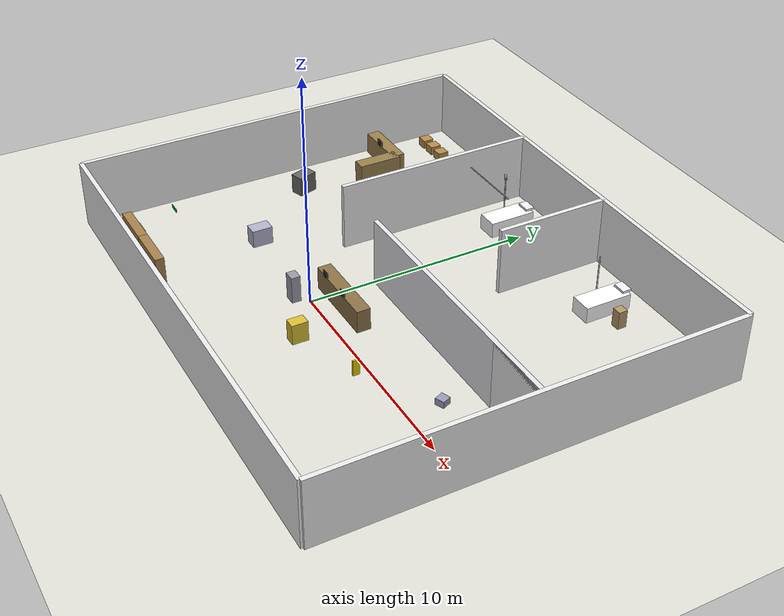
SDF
<sdf version="1.8">
 <world name="hospital">
  <physics name="1ms" type="ignored">
   <max_step_size>0.001</max_step_size>
   <real_time_factor>1.0</real_time_factor>
   <real_time_update_rate>1000</real_time_update_rate>
  </physics>
  <plugin filename="ignition-gazebo-physics-system" name="ignition::gazebo::systems::Physics"/>
  <plugin filename="ignition-gazebo-user-commands-system" name="ignition::gazebo::systems::UserCommands"/>
  <plugin filename="ignition-gazebo-scene-broadcaster-system" name="ignition::gazebo::systems::SceneBroadcaster"/>
  <plugin filename="ignition-gazebo-sensors-system" name="ignition::gazebo::systems::Sensors">
   <render_engine>ogre</render_engine>
  </plugin>
  <plugin filename="ignition-gazebo-contact-system" name="ignition::gazebo::systems::Contact"/>
  <light name="main_light_1" type="directional">
   <pose>0 0 8 0 0 0</pose>
   <diffuse>0.95 0.97 1.0 1</diffuse>
   <specular>0.1 0.1 0.1 1</specular>
   <direction>0.0 0.0 -1.0</direction>
   <cast_shadows>false</cast_shadows>
  </light>
  <light name="corridor_light_1" type="point">
   <pose>0 0 3.8 0 0 0</pose>
   <diffuse>0.95 0.97 1.0 1</diffuse>
   <specular>0.05 0.05 0.05 1</specular>
   <attenuation><range>10</range><linear>0.1</linear><constant>0.5</constant></attenuation>
   <cast_shadows>false</cast_shadows>
  </light>
  <light name="corridor_light_2" type="point">
   <pose>8 0 3.8 0 0 0</pose>
   <diffuse>0.95 0.97 1.0 1</diffuse>
   <specular>0.05 0.05 0.05 1</specular>
   <attenuation><range>10</range><linear>0.1</linear><constant>0.5</constant></attenuation>
   <cast_shadows>false</cast_shadows>
  </light>
  <light name="reception_light" type="point">
   <pose>-8 4 3.8 0 0 0</pose>
   <diffuse>0.95 0.97 1.0 1</diffuse>
   <specular>0.05 0.05 0.05 1</specular>
   <attenuation><range>8</range><linear>0.1</linear><constant>0.5</constant></attenuation>
   <cast_shadows>false</cast_shadows>
  </light>
  <model name="ground_plane">
   <static>true</static>
   <link name="link">
    <collision name="col">
     <geometry><plane><normal>0 0 1</normal><size>60 60</size></plane></geometry>
     <surface><friction><ode><mu>0.8</mu><mu2>0.8</mu2></ode></friction></surface>
    </collision>
    <visual name="vis">
     <geometry><plane><normal>0 0 1</normal><size>60 60</size></plane></geometry>
     <material>
      <ambient>0.88 0.88 0.85 1</ambient>
      <diffuse>0.88 0.88 0.85 1</diffuse>
      <specular>0.05 0.05 0.05 1</specular>
     </material>
    </visual>
   </link>
  </model>
  <model name="wall_north">
   <static>true</static>
   <pose>1 12 1.5 0 0 0</pose>
   <link name="link">
    <collision name="col"><geometry><box><size>22 0.2 3</size></box></geometry></collision>
    <visual name="vis">
     <geometry><box><size>22 0.2 3</size></box></geometry>
     <material>
      <ambient>0.92 0.92 0.92 1</ambient>
      <diffuse>0.92 0.92 0.92 1</diffuse>
      <specular>0.02 0.02 0.02 1</specular>
     </material>
    </visual>
   </link>
  </model>
  <model name="wall_south">
   <static>true</static>
   <pose>1 -6 1.5 0 0 0</pose>
   <link name="link">
    <collision name="col"><geometry><box><size>22 0.2 3</size></box></geometry></collision>
    <visual name="vis">
     <geometry><box><size>22 0.2 3</size></box></geometry>
     <material>
      <ambient>0.92 0.92 0.92 1</ambient>
      <diffuse>0.92 0.92 0.92 1</diffuse>
      <specular>0.02 0.02 0.02 1</specular>
     </material>
    </visual>
   </link>
  </model>
  <model name="wall_west">
   <static>true</static>
   <pose>-10 3 1.5 0 0 0</pose>
   <link name="link">
    <collision name="col"><geometry><box><size>0.2 18 3</size></box></geometry></collision>
    <visual name="vis">
     <geometry><box><size>0.2 18 3</size></box></geometry>
     <material>
      <ambient>0.92 0.92 0.92 1</ambient>
      <diffuse>0.92 0.92 0.92 1</diffuse>
      <specular>0.02 0.02 0.02 1</specular>
     </material>
    </visual>
   </link>
  </model>
  <model name="wall_east">
   <static>true</static>
   <pose>12 3 1.5 0 0 0</pose>
   <link name="link">
    <collision name="col"><geometry><box><size>0.2 18 3</size></box></geometry></collision>
    <visual name="vis">
     <geometry><box><size>0.2 18 3</size></box></geometry>
     <material>
      <ambient>0.92 0.92 0.92 1</ambient>
      <diffuse>0.92 0.92 0.92 1</diffuse>
      <specular>0.02 0.02 0.02 1</specular>
     </material>
    </visual>
   </link>
  </model>
  <model name="corridor_north_east">
   <static>true</static>
   <pose>6 3 1.5 0 0 0</pose>
   <link name="link">
    <collision name="col"><geometry><box><size>12 0.2 3</size></box></geometry></collision>
    <visual name="vis">
     <geometry><box><size>12 0.2 3</size></box></geometry>
     <material>
      <ambient>0.90 0.90 0.92 1</ambient>
      <diffuse>0.90 0.90 0.92 1</diffuse>
      <specular>0.02 0.02 0.02 1</specular>
     </material>
    </visual>
   </link>
  </model>
  <model name="supply_table">
   <static>true</static>
   <pose>-8.5 8 0.5 0 0 0</pose>
   <link name="link">
    <collision name="col"><geometry><box><size>2.5 0.6 1.0</size></box></geometry></collision>
    <visual name="vis">
     <geometry><box><size>2.5 0.6 1.0</size></box></geometry>
     <material><ambient>0.6 0.5 0.3 1</ambient><diffuse>0.6 0.5 0.3 1</diffuse></material>
    </visual>
   </link>
  </model>
  <model name="supply_side">
   <static>true</static>
   <pose>-7.4 7.0 0.5 0 0 0</pose>
   <link name="link">
    <collision name="col"><geometry><box><size>0.6 2.0 1.0</size></box></geometry></collision>
    <visual name="vis">
     <geometry><box><size>0.6 2.0 1.0</size></box></geometry>
     <material><ambient>0.6 0.5 0.3 1</ambient><diffuse>0.6 0.5 0.3 1</diffuse></material>
    </visual>
   </link>
  </model>
  <model name="reception_monitor">
   <static>true</static>
   <pose>-8.5 7.7 1.1 0 0 0</pose>
   <link name="link">
    <collision name="col"><geometry><box><size>0.4 0.05 0.3</size></box></geometry></collision>
    <visual name="vis">
     <geometry><box><size>0.4 0.05 0.3</size></box></geometry>
     <material><ambient>0.1 0.1 0.1 1</ambient><diffuse>0.1 0.1 0.1 1</diffuse></material>
    </visual>
   </link>
  </model>
  <model name="supply_box_1">
   <static>true</static>
   <pose>-9.0 10.5 0.2 0 0 0</pose>
   <link name="link">
    <collision name="col"><geometry><box><size>0.5 0.5 0.4</size></box></geometry></collision>
    <visual name="vis">
     <geometry><box><size>0.5 0.5 0.4</size></box></geometry>
     <material><ambient>0.72 0.55 0.3 1</ambient><diffuse>0.72 0.55 0.3 1</diffuse></material>
    </visual>
   </link>
  </model>
  <model name="supply_box_2">
   <static>true</static>
   <pose>-8.3 10.5 0.2 0 0 0</pose>
   <link name="link">
    <collision name="col"><geometry><box><size>0.5 0.5 0.4</size></box></geometry></collision>
    <visual name="vis">
     <geometry><box><size>0.5 0.5 0.4</size></box></geometry>
     <material><ambient>0.72 0.55 0.3 1</ambient><diffuse>0.72 0.55 0.3 1</diffuse></material>
    </visual>
   </link>
  </model>
  <model name="supply_box_3">
   <static>true</static>
   <pose>-7.6 10.5 0.2 0 0 0</pose>
   <link name="link">
    <collision name="col"><geometry><box><size>0.5 0.5 0.4</size></box></geometry></collision>
    <visual name="vis">
     <geometry><box><size>0.5 0.5 0.4</size></box></geometry>
     <material><ambient>0.72 0.55 0.3 1</ambient><diffuse>0.72 0.55 0.3 1</diffuse></material>
    </visual>
   </link>
  </model>
  <model name="room1_west">
   <static>true</static>
   <pose>-3 7.5 1.5 0 0 0</pose>
   <link name="link">
    <collision name="col"><geometry><box><size>0.2 9 3</size></box></geometry></collision>
    <visual name="vis">
     <geometry><box><size>0.2 9 3</size></box></geometry>
     <material><ambient>0.92 0.92 0.92 1</ambient><diffuse>0.92 0.92 0.92 1</diffuse></material>
    </visual>
   </link>
  </model>
  <model name="room1_east_top">
   <static>true</static>
   <pose>3 9.5 1.5 0 0 0</pose>
   <link name="link">
    <collision name="col"><geometry><box><size>0.2 5 3</size></box></geometry></collision>
    <visual name="vis">
     <geometry><box><size>0.2 5 3</size></box></geometry>
     <material><ambient>0.92 0.92 0.92 1</ambient><diffuse>0.92 0.92 0.92 1</diffuse></material>
    </visual>
   </link>
  </model>
  <model name="bed_room1">
   <static>true</static>
   <pose>-1 10 0.35 0 0 0</pose>
   <link name="link">
    <collision name="col"><geometry><box><size>0.95 2.1 0.7</size></box></geometry></collision>
    <visual name="vis">
     <geometry><box><size>0.95 2.1 0.7</size></box></geometry>
     <material><ambient>1.0 1.0 1.0 1</ambient><diffuse>1.0 1.0 1.0 1</diffuse></material>
    </visual>
   </link>
  </model>
  <model name="pillow_room1">
   <static>true</static>
   <pose>-1 11.0 0.75 0 0 0</pose>
   <link name="link">
    <collision name="col"><geometry><box><size>0.6 0.4 0.1</size></box></geometry></collision>
    <visual name="vis">
     <geometry><box><size>0.6 0.4 0.1</size></box></geometry>
     <material><ambient>0.95 0.95 1.0 1</ambient><diffuse>0.95 0.95 1.0 1</diffuse></material>
    </visual>
   </link>
  </model>
  <model name="bedside_table_1">
   <static>true</static>
   <pose>0.3 10 0.4 0 0 0</pose>
   <link name="link">
    <collision name="col"><geometry><box><size>0.4 0.4 0.8</size></box></geometry></collision>
    <visual name="vis">
     <geometry><box><size>0.4 0.4 0.8</size></box></geometry>
     <material><ambient>0.7 0.6 0.4 1</ambient><diffuse>0.7 0.6 0.4 1</diffuse></material>
    </visual>
   </link>
  </model>
  <model name="iv_stand_1">
   <static>true</static>
   <pose>-2.0 10.5 0.9 0 0 0</pose>
   <link name="link">
    <collision name="col">
     <geometry><cylinder><radius>0.03</radius><length>1.8</length></cylinder></geometry>
    </collision>
    <visual name="vis">
     <geometry><cylinder><radius>0.03</radius><length>1.8</length></cylinder></geometry>
     <material><ambient>0.8 0.8 0.8 1</ambient><diffuse>0.8 0.8 0.8 1</diffuse></material>
    </visual>
   </link>
  </model>
  <model name="iv_bag_1">
   <static>true</static>
   <pose>-2.0 10.5 1.85 0 0 0</pose>
   <link name="link">
    <collision name="col"><geometry><box><size>0.15 0.05 0.25</size></box></geometry></collision>
    <visual name="vis">
     <geometry><box><size>0.15 0.05 0.25</size></box></geometry>
     <material><ambient>0.7 0.9 0.7 0.8</ambient><diffuse>0.7 0.9 0.7 0.8</diffuse></material>
    </visual>
   </link>
  </model>
  <model name="curtain_rail_1">
   <static>true</static>
   <pose>-1 9.0 2.5 0 0 0</pose>
   <link name="link">
    <collision name="col">
     <geometry><cylinder><radius>0.02</radius><length>3.0</length></cylinder></geometry>
     <pose>0 0 0 0 1.5708 0</pose>
    </collision>
    <visual name="vis">
     <geometry><cylinder><radius>0.02</radius><length>3.0</length></cylinder></geometry>
     <pose>0 0 0 0 1.5708 0</pose>
     <material><ambient>0.7 0.7 0.7 1</ambient><diffuse>0.7 0.7 0.7 1</diffuse></material>
    </visual>
   </link>
  </model>
  <model name="bed_room2">
   <static>true</static>
   <pose>6 10 0.35 0 0 0</pose>
   <link name="link">
    <collision name="col"><geometry><box><size>0.95 2.1 0.7</size></box></geometry></collision>
    <visual name="vis">
     <geometry><box><size>0.95 2.1 0.7</size></box></geometry>
     <material><ambient>1.0 1.0 1.0 1</ambient><diffuse>1.0 1.0 1.0 1</diffuse></material>
    </visual>
   </link>
  </model>
  <model name="pillow_room2">
   <static>true</static>
   <pose>6 11.0 0.75 0 0 0</pose>
   <link name="link">
    <collision name="col"><geometry><box><size>0.6 0.4 0.1</size></box></geometry></collision>
    <visual name="vis">
     <geometry><box><size>0.6 0.4 0.1</size></box></geometry>
     <material><ambient>0.95 0.95 1.0 1</ambient><diffuse>0.95 0.95 1.0 1</diffuse></material>
    </visual>
   </link>
  </model>
  <model name="bedside_table_2">
   <static>true</static>
   <pose>7.2 10 0.4 0 0 0</pose>
   <link name="link">
    <collision name="col"><geometry><box><size>0.4 0.4 0.8</size></box></geometry></collision>
    <visual name="vis">
     <geometry><box><size>0.4 0.4 0.8</size></box></geometry>
     <material><ambient>0.7 0.6 0.4 1</ambient><diffuse>0.7 0.6 0.4 1</diffuse></material>
    </visual>
   </link>
  </model>
  <model name="iv_stand_2">
   <static>true</static>
   <pose>5.0 10.5 0.9 0 0 0</pose>
   <link name="link">
    <collision name="col">
     <geometry><cylinder><radius>0.03</radius><length>1.8</length></cylinder></geometry>
    </collision>
    <visual name="vis">
     <geometry><cylinder><radius>0.03</radius><length>1.8</length></cylinder></geometry>
     <material><ambient>0.8 0.8 0.8 1</ambient><diffuse>0.8 0.8 0.8 1</diffuse></material>
    </visual>
   </link>
  </model>
  <model name="nurses_desk_main">
   <static>true</static>
   <pose>1 1.0 0.5 0 0 0</pose>
   <link name="link">
    <collision name="col"><geometry><box><size>3.5 0.6 1.0</size></box></geometry></collision>
    <visual name="vis">
     <geometry><box><size>3.5 0.6 1.0</size></box></geometry>
     <material><ambient>0.55 0.45 0.28 1</ambient><diffuse>0.55 0.45 0.28 1</diffuse></material>
    </visual>
   </link>
  </model>
  <model name="nurses_monitor_1">
   <static>true</static>
   <pose>0.0 0.7 1.1 0 0 0</pose>
   <link name="link">
    <collision name="col"><geometry><box><size>0.35 0.05 0.28</size></box></geometry></collision>
    <visual name="vis">
     <geometry><box><size>0.35 0.05 0.28</size></box></geometry>
     <material><ambient>0.08 0.08 0.08 1</ambient><diffuse>0.08 0.08 0.08 1</diffuse></material>
    </visual>
   </link>
  </model>
  <model name="nurses_monitor_2">
   <static>true</static>
   <pose>1.5 0.7 1.1 0 0 0</pose>
   <link name="link">
    <collision name="col"><geometry><box><size>0.35 0.05 0.28</size></box></geometry></collision>
    <visual name="vis">
     <geometry><box><size>0.35 0.05 0.28</size></box></geometry>
     <material><ambient>0.08 0.08 0.08 1</ambient><diffuse>0.08 0.08 0.08 1</diffuse></material>
    </visual>
   </link>
  </model>
  <model name="filing_cabinet">
   <static>true</static>
   <pose>-0.5 -0.5 0.6 0 0 0</pose>
   <link name="link">
    <collision name="col"><geometry><box><size>0.5 0.4 1.2</size></box></geometry></collision>
    <visual name="vis">
     <geometry><box><size>0.5 0.4 1.2</size></box></geometry>
     <material><ambient>0.6 0.6 0.65 1</ambient><diffuse>0.6 0.6 0.65 1</diffuse></material>
    </visual>
   </link>
  </model>
  <model name="ot_north_wall">
   <static>true</static>
   <pose>10.5 3 1.5 0 0 0</pose>
   <link name="link">
    <collision name="col"><geometry><box><size>3 0.2 3</size></box></geometry></collision>
    <visual name="vis">
     <geometry><box><size>3 0.2 3</size></box></geometry>
     <material><ambient>0.92 0.92 0.92 1</ambient><diffuse>0.92 0.92 0.92 1</diffuse></material>
    </visual>
   </link>
  </model>
  <model name="charging_dock">
   <static>true</static>
   <pose>-8.5 -4.5 0.02 0 0 0</pose>
   <link name="link">
    <collision name="col"><geometry><box><size>0.8 0.8 0.04</size></box></geometry></collision>
    <visual name="vis">
     <geometry><box><size>0.8 0.8 0.04</size></box></geometry>
     <material><ambient>0.2 0.8 0.2 1</ambient><diffuse>0.2 0.8 0.2 1</diffuse></material>
    </visual>
   </link>
  </model>
  <model name="shelf_1">
   <static>true</static>
   <pose>-6.5 -5.0 0.8 0 0 0</pose>
   <link name="link">
    <collision name="col"><geometry><box><size>2.0 0.4 1.6</size></box></geometry></collision>
    <visual name="vis">
     <geometry><box><size>2.0 0.4 1.6</size></box></geometry>
     <material><ambient>0.65 0.5 0.3 1</ambient><diffuse>0.65 0.5 0.3 1</diffuse></material>
    </visual>
   </link>
  </model>
  <model name="shelf_2">
   <static>true</static>
   <pose>-4.5 -5.0 0.8 0 0 0</pose>
   <link name="link">
    <collision name="col"><geometry><box><size>2.0 0.4 1.6</size></box></geometry></collision>
    <visual name="vis">
     <geometry><box><size>2.0 0.4 1.6</size></box></geometry>
     <material><ambient>0.65 0.5 0.3 1</ambient><diffuse>0.65 0.5 0.3 1</diffuse></material>
    </visual>
   </link>
  </model>
  <model name="laundry_cart">
   <static>true</static>
   <pose>-5 0 0.4 0 0 0</pose>
   <link name="link">
    <collision name="col"><geometry><box><size>0.6 0.9 0.8</size></box></geometry></collision>
    <visual name="vis">
     <geometry><box><size>0.6 0.9 0.8</size></box></geometry>
     <material><ambient>0.7 0.7 0.8 1</ambient><diffuse>0.7 0.7 0.8 1</diffuse></material>
    </visual>
   </link>
  </model>
  <model name="food_trolley">
   <static>true</static>
   <pose>2 -1.5 0.45 0 0 0</pose>
   <link name="link">
    <collision name="col"><geometry><box><size>0.5 0.7 0.9</size></box></geometry></collision>
    <visual name="vis">
     <geometry><box><size>0.5 0.7 0.9</size></box></geometry>
     <material><ambient>0.85 0.75 0.2 1</ambient><diffuse>0.85 0.75 0.2 1</diffuse></material>
    </visual>
   </link>
  </model>
  <model name="wet_floor_sign">
   <static>true</static>
   <pose>5 -0.5 0.35 0 0 0</pose>
   <link name="link">
    <collision name="col"><geometry><box><size>0.08 0.3 0.7</size></box></geometry></collision>
    <visual name="vis">
     <geometry><box><size>0.08 0.3 0.7</size></box></geometry>
     <material><ambient>0.9 0.8 0.0 1</ambient><diffuse>0.9 0.8 0.0 1</diffuse></material>
    </visual>
   </link>
  </model>
  <model name="laundry_bag">
   <static>true</static>
   <pose>8 1.5 0.15 0 0 0.4</pose>
   <link name="link">
    <collision name="col"><geometry><box><size>0.4 0.4 0.3</size></box></geometry></collision>
    <visual name="vis">
     <geometry><box><size>0.4 0.4 0.3</size></box></geometry>
     <material><ambient>0.6 0.6 0.7 1</ambient><diffuse>0.6 0.6 0.7 1</diffuse></material>
    </visual>
   </link>
  </model>
  <model name="wheelchair">
   <static>true</static>
   <pose>-8 3.5 0.45 0 0 0.3</pose>
   <link name="link">
    <collision name="col"><geometry><box><size>0.6 0.9 0.9</size></box></geometry></collision>
    <visual name="vis">
     <geometry><box><size>0.6 0.9 0.9</size></box></geometry>
     <material><ambient>0.4 0.4 0.4 1</ambient><diffuse>0.4 0.4 0.4 1</diffuse></material>
    </visual>
   </link>
  </model>
  <model name="sign_room1">
   <static>true</static>
   <pose>0 3.05 1.5 0 0 0</pose>
   <link name="link">
    <collision name="col"><geometry><box><size>0.4 0.02 0.15</size></box></geometry></collision>
    <visual name="vis">
     <geometry><box><size>0.4 0.02 0.15</size></box></geometry>
     <material><ambient>0.1 0.4 0.8 1</ambient><diffuse>0.1 0.4 0.8 1</diffuse></material>
    </visual>
   </link>
  </model>
  <model name="sign_room2">
   <static>true</static>
   <pose>6 3.05 1.5 0 0 0</pose>
   <link name="link">
    <collision name="col"><geometry><box><size>0.4 0.02 0.15</size></box></geometry></collision>
    <visual name="vis">
     <geometry><box><size>0.4 0.02 0.15</size></box></geometry>
     <material><ambient>0.1 0.4 0.8 1</ambient><diffuse>0.1 0.4 0.8 1</diffuse></material>
    </visual>
   </link>
  </model>
  <model name="sign_charging">
   <static>true</static>
   <pose>-7 -3.05 1.5 0 0 0</pose>
   <link name="link">
    <collision name="col"><geometry><box><size>0.5 0.02 0.15</size></box></geometry></collision>
    <visual name="vis">
     <geometry><box><size>0.5 0.02 0.15</size></box></geometry>
     <material><ambient>0.1 0.7 0.1 1</ambient><diffuse>0.1 0.7 0.1 1</diffuse></material>
    </visual>
   </link>
  </model>
 </world>
</sdf>
